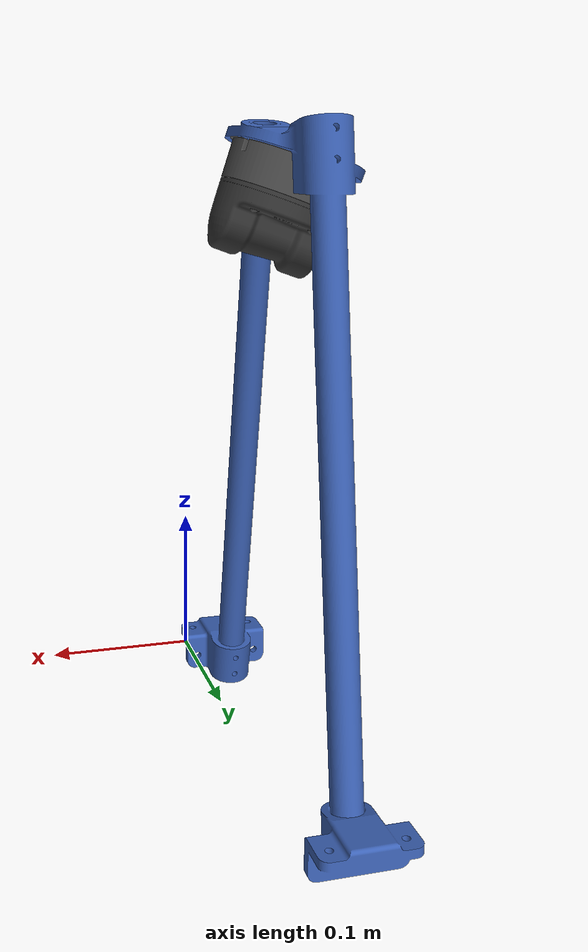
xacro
<?xml version="1.0" ?>
<!-- Generated using onshape-to-robot -->
<!-- Onshape https://tronsoc.onshape.com/documents/a04fc62c100c90ae88802972/w/c0a63c4f09140e5b63a1ee94/e/6441c68a791f9e1842cd52ba -->
<robot name="autonomous_lidar_payload">
  <!-- Link autonomouslidarmount -->
  <link name="autonomouslidarmount">
    <inertial>
      <origin xyz="-0.0301856 0.1375 0.184178" rpy="0 0 0"/>
      <mass value="0.4"/>
      <inertia ixx="0.0134847" ixy="3.8e-11" ixz="4.99203e-06" iyy="0.0100213" iyz="-2.9141e-08" izz="0.00357387"/>
    </inertial>
    <!-- Part autonomouslidarmount -->
    <visual>
      <origin xyz="-0.420514 0.1375 -0.1216" rpy="-0 -0 0"/>
      <geometry>
        <mesh filename="package://kanga_description/meshes/payloads/auto/autonomouslidarmount.stl"/>
      </geometry>
      <material name="autonomouslidarmount_material">
        <color rgba="0.231373 0.380392 0.705882 1"/>
      </material>
    </visual>
    <collision>
      <origin xyz="-0.420514 0.1375 -0.1216" rpy="-0 -0 0"/>
      <geometry>
        <mesh filename="package://kanga_description/meshes/payloads/auto/autonomouslidarmount.stl"/>
      </geometry>
    </collision>
  </link>
  <!-- Frame UniLidarL2Mount (dummy link + fixed joint) -->
  <link name="UniLidarL2Mount">
    <origin xyz="0 0 0" rpy="0 -0 0"/>
    <inertial>
      <origin xyz="0 0 0" rpy="0 0 0"/>
      <mass value="1e-9"/>
      <inertia ixx="0" ixy="0" ixz="0" iyy="0" iyz="0" izz="0"/>
    </inertial>
  </link>
  <joint name="UniLidarL2Mount_frame" type="fixed">
    <origin xyz="-0.0300581 0.1375 0.355979" rpy="2.79253 -0 1.5708"/>
    <parent link="autonomouslidarmount"/>
    <child link="UniLidarL2Mount"/>
    <axis xyz="0 0 0"/>
  </joint>

  <!-- UniLidarL2 attachment -->
  <joint name="UniLidarL2_to_mount" type="fixed">
    <origin xyz="0 0 0" rpy="0 0 0"/>
    <parent link="UniLidarL2Mount"/>
    <child link="unilidarl2base"/>
    <axis xyz="0 0 0"/>
  </joint>

  <!-- Link unilidarl2base -->
  <link name="unilidarl2base">
    <inertial>
      <origin xyz="-4.86924e-06 6.88756e-05 0.00436145" rpy="0 0 0"/>
      <mass value="0.1"/>
      <inertia ixx="4.60192e-05" ixy="-1.473e-09" ixz="-3.537e-09" iyy="4.63963e-05" iyz="9.141e-08" izz="8.42575e-05"/>
    </inertial>
    <visual>
      <origin xyz="0.53025 -1.94934e-06 0.313234" rpy="3.14159 -0.349066 -3.14159"/>
      <geometry>
        <mesh filename="package://kanga_description/meshes/sensors/unilidar_l2/unilidarl2base.stl"/>
      </geometry>
      <material name="unilidarl2base_material">
        <color rgba="0.301961 0.301961 0.301961 1"/>
      </material>
    </visual>
    <collision>
      <origin xyz="0.53025 -1.94934e-06 0.313234" rpy="3.14159 -0.349066 -3.14159"/>
      <geometry>
        <mesh filename="package://kanga_description/meshes/sensors/unilidar_l2/unilidarl2base.stl"/>
      </geometry>
    </collision>
  </link>

  <!-- Frame LidarBase (dummy link + fixed joint) -->
  <link name="LidarBase">
    <inertial>
      <origin xyz="0 0 0" rpy="0 0 0"/>
      <mass value="1e-9"/>
      <inertia ixx="0" ixy="0" ixz="0" iyy="0" iyz="0" izz="0"/>
    </inertial>
  </link>
  <joint name="LidarBase_frame" type="fixed">
    <origin xyz="0 0 -0" rpy="0 0 1.5708"/>
    <parent link="unilidarl2base"/>
    <child link="LidarBase"/>
    <axis xyz="0 0 0"/>
  </joint>

  <!-- Link unilidarl2top -->
  <link name="unilidarl2top">
    <inertial>
      <origin xyz="-2.7414e-06 6.66489e-05 -0.0157604" rpy="0 0 0"/>
      <mass value="0.13"/>
      <inertia ixx="5.78833e-05" ixy="-1.075e-09" ixz="2.975e-09" iyy="3.66094e-05" iyz="9.3857e-08" izz="7.00661e-05"/>
    </inertial>
    <visual>
      <origin xyz="-0.53025 -1.94934e-06 -0.290634" rpy="-0 0.349066 -0"/>
      <geometry>
        <mesh filename="package://kanga_description/meshes/sensors/unilidar_l2/unilidarl2top.stl"/>
      </geometry>
      <material name="unilidarl2top_material">
        <color rgba="0.215686 0.215686 0.215686 1"/>
      </material>
    </visual>
    <collision>
      <origin xyz="-0.53025 -1.94934e-06 -0.290634" rpy="-0 0.349066 -0"/>
      <geometry>
        <mesh filename="package://kanga_description/meshes/sensors/unilidar_l2/unilidarl2top.stl"/>
      </geometry>
    </collision>
  </link>

  <!-- Joint from unilidarl2base to unilidarl2top -->
  <joint name="LidarTop" type="revolute">
    <origin xyz="0 0 0.0226" rpy="3.14159 -0 -3.14159"/>
    <parent link="unilidarl2base"/>
    <child link="unilidarl2top"/>
    <axis xyz="0 0 1"/>
    <limit effort="10" velocity="10" lower="0" upper="0"/>
  </joint>
</robot>
